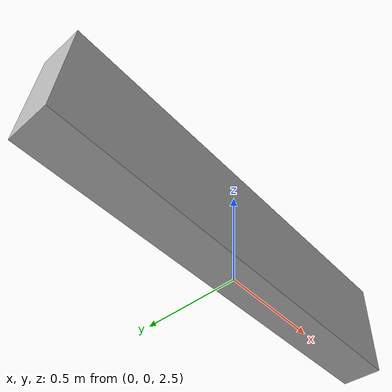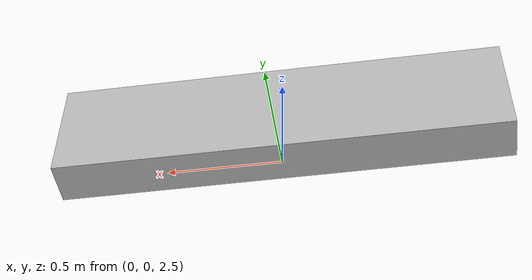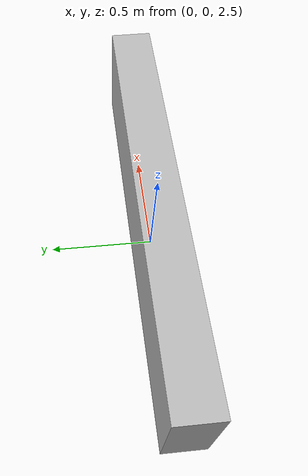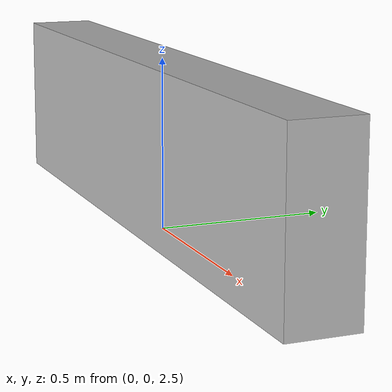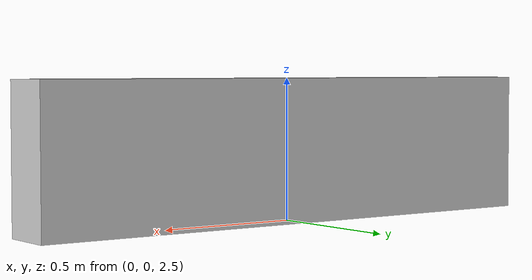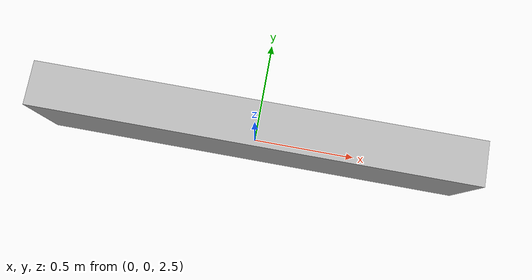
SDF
<?xml version="1.0"?>
<sdf version="1.7">

    <model name="new_door_up">
        <static>true</static>
        <link name="link">
            <pose>0 0 2.75 0 0 0</pose>
            <collision name="collision">
                <geometry>
                    <box>
                        <size>2.0 0.2 0.5</size>
                    </box>
                </geometry>
            </collision>

            <visual name="visual">
                <cast_shadows>false</cast_shadows>
                <geometry>
                    <box>
                        <size>2.0 0.2 0.5</size>
                    </box>
                </geometry>
            </visual>
        </link>
    </model>

</sdf>
